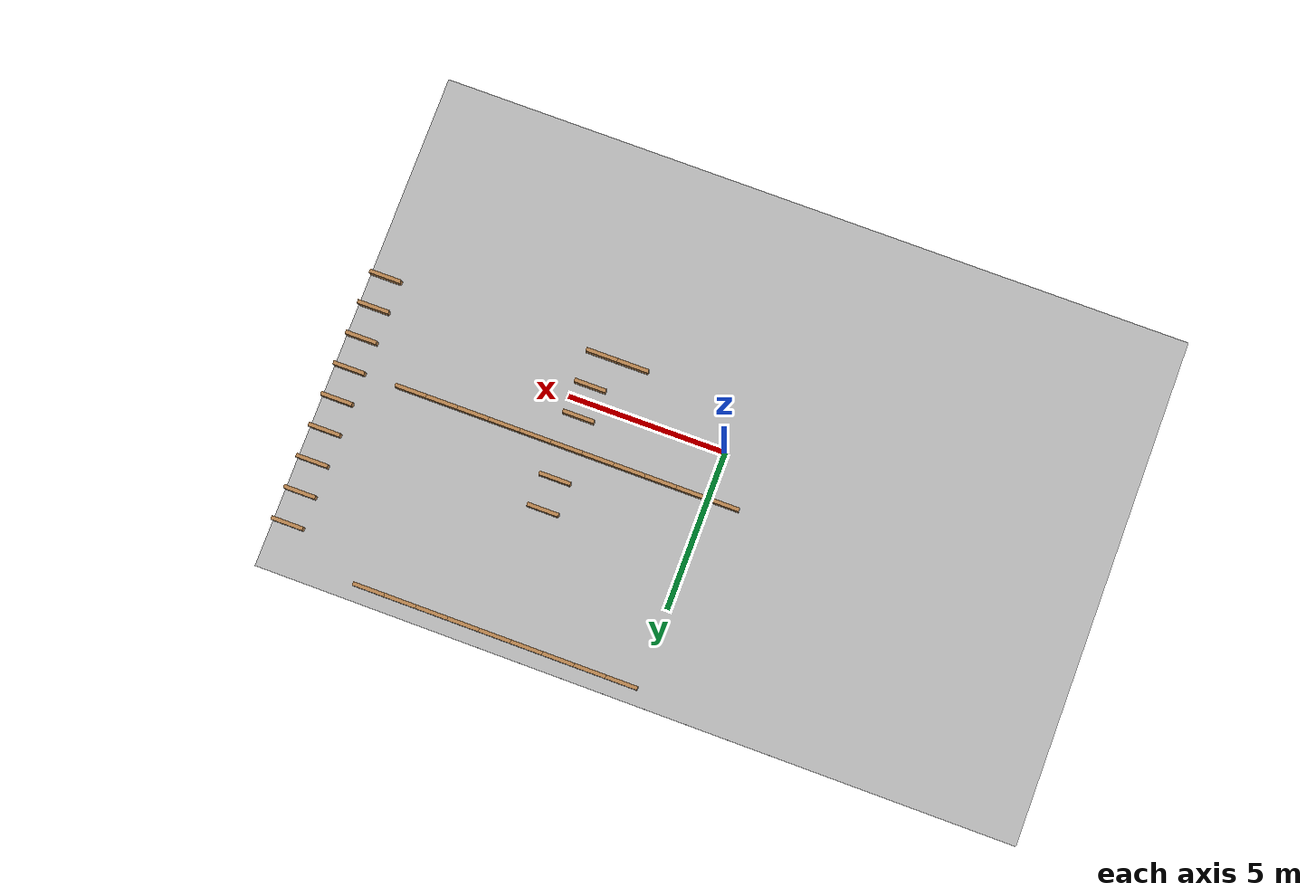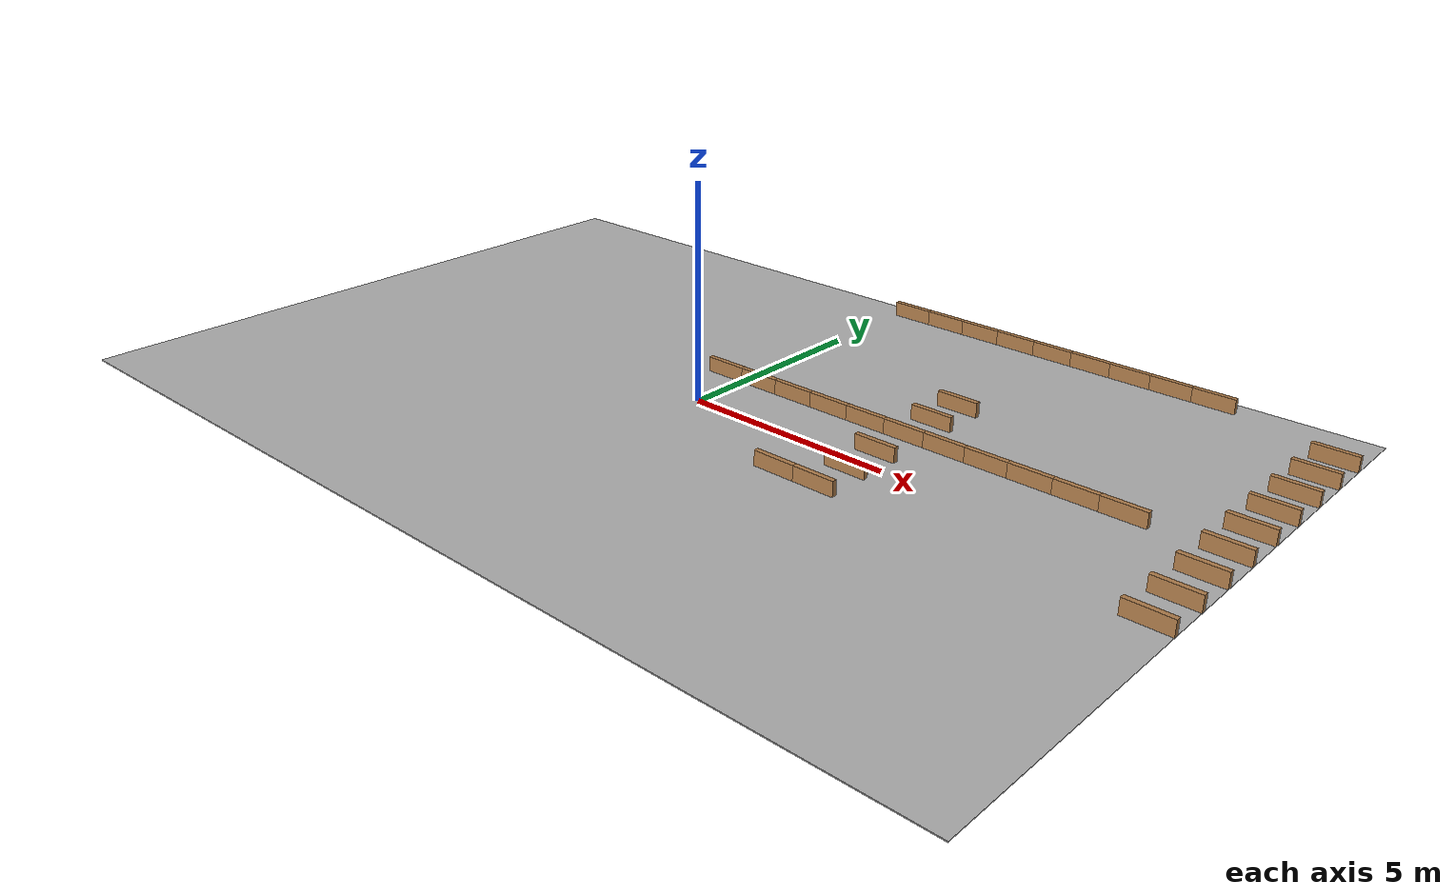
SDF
<sdf version="1.7">
 <world name="default">
  <include><uri>model://sun</uri></include>
  <model name="floor">
   <pose>0 0 -0.01 0 0 0</pose>
   <static>true</static>
   <link name="link">
    <collision name="col"><geometry><box><size>24.0 16.0 0.02</size></box></geometry></collision>
    <visual name="vis">
     <geometry><box><size>24.0 16.0 0.02</size></box></geometry>
     <material>
      <ambient>0.3 0.3 0.3 1</ambient>
      <diffuse>0.7 0.7 0.7 1</diffuse>
      <specular>0.1 0.1 0.1 1</specular>
     </material>
    </visual>
   </link>
  </model>
  <model name="wall_r0_c12">
   <pose>0.5 7.5 0.175 0 0 0</pose>
   <static>true</static>
   <link name="link">
    <collision name="col"><geometry><box><size>1.0 0.12 0.35</size></box></geometry></collision>
    <visual name="vis">
     <geometry><box><size>1.0 0.12 0.35</size></box></geometry>
     <material>
      <ambient>0.3 0.2 0.1 1</ambient>
      <diffuse>0.7 0.5 0.3 1</diffuse>
      <specular>0.1 0.1 0.1 1</specular>
     </material>
    </visual>
   </link>
  </model>
  <model name="wall_r0_c13">
   <pose>1.5 7.5 0.175 0 0 0</pose>
   <static>true</static>
   <link name="link">
    <collision name="col"><geometry><box><size>1.0 0.12 0.35</size></box></geometry></collision>
    <visual name="vis">
     <geometry><box><size>1.0 0.12 0.35</size></box></geometry>
     <material>
      <ambient>0.3 0.2 0.1 1</ambient>
      <diffuse>0.7 0.5 0.3 1</diffuse>
      <specular>0.1 0.1 0.1 1</specular>
     </material>
    </visual>
   </link>
  </model>
  <model name="wall_r0_c14">
   <pose>2.5 7.5 0.175 0 0 0</pose>
   <static>true</static>
   <link name="link">
    <collision name="col"><geometry><box><size>1.0 0.12 0.35</size></box></geometry></collision>
    <visual name="vis">
     <geometry><box><size>1.0 0.12 0.35</size></box></geometry>
     <material>
      <ambient>0.3 0.2 0.1 1</ambient>
      <diffuse>0.7 0.5 0.3 1</diffuse>
      <specular>0.1 0.1 0.1 1</specular>
     </material>
    </visual>
   </link>
  </model>
  <model name="wall_r0_c15">
   <pose>3.5 7.5 0.175 0 0 0</pose>
   <static>true</static>
   <link name="link">
    <collision name="col"><geometry><box><size>1.0 0.12 0.35</size></box></geometry></collision>
    <visual name="vis">
     <geometry><box><size>1.0 0.12 0.35</size></box></geometry>
     <material>
      <ambient>0.3 0.2 0.1 1</ambient>
      <diffuse>0.7 0.5 0.3 1</diffuse>
      <specular>0.1 0.1 0.1 1</specular>
     </material>
    </visual>
   </link>
  </model>
  <model name="wall_r0_c16">
   <pose>4.5 7.5 0.175 0 0 0</pose>
   <static>true</static>
   <link name="link">
    <collision name="col"><geometry><box><size>1.0 0.12 0.35</size></box></geometry></collision>
    <visual name="vis">
     <geometry><box><size>1.0 0.12 0.35</size></box></geometry>
     <material>
      <ambient>0.3 0.2 0.1 1</ambient>
      <diffuse>0.7 0.5 0.3 1</diffuse>
      <specular>0.1 0.1 0.1 1</specular>
     </material>
    </visual>
   </link>
  </model>
  <model name="wall_r0_c17">
   <pose>5.5 7.5 0.175 0 0 0</pose>
   <static>true</static>
   <link name="link">
    <collision name="col"><geometry><box><size>1.0 0.12 0.35</size></box></geometry></collision>
    <visual name="vis">
     <geometry><box><size>1.0 0.12 0.35</size></box></geometry>
     <material>
      <ambient>0.3 0.2 0.1 1</ambient>
      <diffuse>0.7 0.5 0.3 1</diffuse>
      <specular>0.1 0.1 0.1 1</specular>
     </material>
    </visual>
   </link>
  </model>
  <model name="wall_r0_c18">
   <pose>6.5 7.5 0.175 0 0 0</pose>
   <static>true</static>
   <link name="link">
    <collision name="col"><geometry><box><size>1.0 0.12 0.35</size></box></geometry></collision>
    <visual name="vis">
     <geometry><box><size>1.0 0.12 0.35</size></box></geometry>
     <material>
      <ambient>0.3 0.2 0.1 1</ambient>
      <diffuse>0.7 0.5 0.3 1</diffuse>
      <specular>0.1 0.1 0.1 1</specular>
     </material>
    </visual>
   </link>
  </model>
  <model name="wall_r0_c19">
   <pose>7.5 7.5 0.175 0 0 0</pose>
   <static>true</static>
   <link name="link">
    <collision name="col"><geometry><box><size>1.0 0.12 0.35</size></box></geometry></collision>
    <visual name="vis">
     <geometry><box><size>1.0 0.12 0.35</size></box></geometry>
     <material>
      <ambient>0.3 0.2 0.1 1</ambient>
      <diffuse>0.7 0.5 0.3 1</diffuse>
      <specular>0.1 0.1 0.1 1</specular>
     </material>
    </visual>
   </link>
  </model>
  <model name="wall_r0_c20">
   <pose>8.5 7.5 0.175 0 0 0</pose>
   <static>true</static>
   <link name="link">
    <collision name="col"><geometry><box><size>1.0 0.12 0.35</size></box></geometry></collision>
    <visual name="vis">
     <geometry><box><size>1.0 0.12 0.35</size></box></geometry>
     <material>
      <ambient>0.3 0.2 0.1 1</ambient>
      <diffuse>0.7 0.5 0.3 1</diffuse>
      <specular>0.1 0.1 0.1 1</specular>
     </material>
    </visual>
   </link>
  </model>
  <model name="wall_r1_c23">
   <pose>11.5 6.5 0.175 0 0 0</pose>
   <static>true</static>
   <link name="link">
    <collision name="col"><geometry><box><size>1.0 0.12 0.35</size></box></geometry></collision>
    <visual name="vis">
     <geometry><box><size>1.0 0.12 0.35</size></box></geometry>
     <material>
      <ambient>0.3 0.2 0.1 1</ambient>
      <diffuse>0.7 0.5 0.3 1</diffuse>
      <specular>0.1 0.1 0.1 1</specular>
     </material>
    </visual>
   </link>
  </model>
  <model name="wall_r2_c23">
   <pose>11.5 5.5 0.175 0 0 0</pose>
   <static>true</static>
   <link name="link">
    <collision name="col"><geometry><box><size>1.0 0.12 0.35</size></box></geometry></collision>
    <visual name="vis">
     <geometry><box><size>1.0 0.12 0.35</size></box></geometry>
     <material>
      <ambient>0.3 0.2 0.1 1</ambient>
      <diffuse>0.7 0.5 0.3 1</diffuse>
      <specular>0.1 0.1 0.1 1</specular>
     </material>
    </visual>
   </link>
  </model>
  <model name="wall_r3_c23">
   <pose>11.5 4.5 0.175 0 0 0</pose>
   <static>true</static>
   <link name="link">
    <collision name="col"><geometry><box><size>1.0 0.12 0.35</size></box></geometry></collision>
    <visual name="vis">
     <geometry><box><size>1.0 0.12 0.35</size></box></geometry>
     <material>
      <ambient>0.3 0.2 0.1 1</ambient>
      <diffuse>0.7 0.5 0.3 1</diffuse>
      <specular>0.1 0.1 0.1 1</specular>
     </material>
    </visual>
   </link>
  </model>
  <model name="wall_r4_c16">
   <pose>4.5 3.5 0.175 0 0 0</pose>
   <static>true</static>
   <link name="link">
    <collision name="col"><geometry><box><size>1.0 0.12 0.35</size></box></geometry></collision>
    <visual name="vis">
     <geometry><box><size>1.0 0.12 0.35</size></box></geometry>
     <material>
      <ambient>0.3 0.2 0.1 1</ambient>
      <diffuse>0.7 0.5 0.3 1</diffuse>
      <specular>0.1 0.1 0.1 1</specular>
     </material>
    </visual>
   </link>
  </model>
  <model name="wall_r4_c23">
   <pose>11.5 3.5 0.175 0 0 0</pose>
   <static>true</static>
   <link name="link">
    <collision name="col"><geometry><box><size>1.0 0.12 0.35</size></box></geometry></collision>
    <visual name="vis">
     <geometry><box><size>1.0 0.12 0.35</size></box></geometry>
     <material>
      <ambient>0.3 0.2 0.1 1</ambient>
      <diffuse>0.7 0.5 0.3 1</diffuse>
      <specular>0.1 0.1 0.1 1</specular>
     </material>
    </visual>
   </link>
  </model>
  <model name="wall_r5_c16">
   <pose>4.5 2.5 0.175 0 0 0</pose>
   <static>true</static>
   <link name="link">
    <collision name="col"><geometry><box><size>1.0 0.12 0.35</size></box></geometry></collision>
    <visual name="vis">
     <geometry><box><size>1.0 0.12 0.35</size></box></geometry>
     <material>
      <ambient>0.3 0.2 0.1 1</ambient>
      <diffuse>0.7 0.5 0.3 1</diffuse>
      <specular>0.1 0.1 0.1 1</specular>
     </material>
    </visual>
   </link>
  </model>
  <model name="wall_r5_c23">
   <pose>11.5 2.5 0.175 0 0 0</pose>
   <static>true</static>
   <link name="link">
    <collision name="col"><geometry><box><size>1.0 0.12 0.35</size></box></geometry></collision>
    <visual name="vis">
     <geometry><box><size>1.0 0.12 0.35</size></box></geometry>
     <material>
      <ambient>0.3 0.2 0.1 1</ambient>
      <diffuse>0.7 0.5 0.3 1</diffuse>
      <specular>0.1 0.1 0.1 1</specular>
     </material>
    </visual>
   </link>
  </model>
  <model name="wall_r6_c11">
   <pose>-0.5 1.5 0.175 0 0 0</pose>
   <static>true</static>
   <link name="link">
    <collision name="col"><geometry><box><size>1.0 0.12 0.35</size></box></geometry></collision>
    <visual name="vis">
     <geometry><box><size>1.0 0.12 0.35</size></box></geometry>
     <material>
      <ambient>0.3 0.2 0.1 1</ambient>
      <diffuse>0.7 0.5 0.3 1</diffuse>
      <specular>0.1 0.1 0.1 1</specular>
     </material>
    </visual>
   </link>
  </model>
  <model name="wall_r6_c12">
   <pose>0.5 1.5 0.175 0 0 0</pose>
   <static>true</static>
   <link name="link">
    <collision name="col"><geometry><box><size>1.0 0.12 0.35</size></box></geometry></collision>
    <visual name="vis">
     <geometry><box><size>1.0 0.12 0.35</size></box></geometry>
     <material>
      <ambient>0.3 0.2 0.1 1</ambient>
      <diffuse>0.7 0.5 0.3 1</diffuse>
      <specular>0.1 0.1 0.1 1</specular>
     </material>
    </visual>
   </link>
  </model>
  <model name="wall_r6_c13">
   <pose>1.5 1.5 0.175 0 0 0</pose>
   <static>true</static>
   <link name="link">
    <collision name="col"><geometry><box><size>1.0 0.12 0.35</size></box></geometry></collision>
    <visual name="vis">
     <geometry><box><size>1.0 0.12 0.35</size></box></geometry>
     <material>
      <ambient>0.3 0.2 0.1 1</ambient>
      <diffuse>0.7 0.5 0.3 1</diffuse>
      <specular>0.1 0.1 0.1 1</specular>
     </material>
    </visual>
   </link>
  </model>
  <model name="wall_r6_c14">
   <pose>2.5 1.5 0.175 0 0 0</pose>
   <static>true</static>
   <link name="link">
    <collision name="col"><geometry><box><size>1.0 0.12 0.35</size></box></geometry></collision>
    <visual name="vis">
     <geometry><box><size>1.0 0.12 0.35</size></box></geometry>
     <material>
      <ambient>0.3 0.2 0.1 1</ambient>
      <diffuse>0.7 0.5 0.3 1</diffuse>
      <specular>0.1 0.1 0.1 1</specular>
     </material>
    </visual>
   </link>
  </model>
  <model name="wall_r6_c15">
   <pose>3.5 1.5 0.175 0 0 0</pose>
   <static>true</static>
   <link name="link">
    <collision name="col"><geometry><box><size>1.0 0.12 0.35</size></box></geometry></collision>
    <visual name="vis">
     <geometry><box><size>1.0 0.12 0.35</size></box></geometry>
     <material>
      <ambient>0.3 0.2 0.1 1</ambient>
      <diffuse>0.7 0.5 0.3 1</diffuse>
      <specular>0.1 0.1 0.1 1</specular>
     </material>
    </visual>
   </link>
  </model>
  <model name="wall_r6_c16">
   <pose>4.5 1.5 0.175 0 0 0</pose>
   <static>true</static>
   <link name="link">
    <collision name="col"><geometry><box><size>1.0 0.12 0.35</size></box></geometry></collision>
    <visual name="vis">
     <geometry><box><size>1.0 0.12 0.35</size></box></geometry>
     <material>
      <ambient>0.3 0.2 0.1 1</ambient>
      <diffuse>0.7 0.5 0.3 1</diffuse>
      <specular>0.1 0.1 0.1 1</specular>
     </material>
    </visual>
   </link>
  </model>
  <model name="wall_r6_c17">
   <pose>5.5 1.5 0.175 0 0 0</pose>
   <static>true</static>
   <link name="link">
    <collision name="col"><geometry><box><size>1.0 0.12 0.35</size></box></geometry></collision>
    <visual name="vis">
     <geometry><box><size>1.0 0.12 0.35</size></box></geometry>
     <material>
      <ambient>0.3 0.2 0.1 1</ambient>
      <diffuse>0.7 0.5 0.3 1</diffuse>
      <specular>0.1 0.1 0.1 1</specular>
     </material>
    </visual>
   </link>
  </model>
  <model name="wall_r6_c18">
   <pose>6.5 1.5 0.175 0 0 0</pose>
   <static>true</static>
   <link name="link">
    <collision name="col"><geometry><box><size>1.0 0.12 0.35</size></box></geometry></collision>
    <visual name="vis">
     <geometry><box><size>1.0 0.12 0.35</size></box></geometry>
     <material>
      <ambient>0.3 0.2 0.1 1</ambient>
      <diffuse>0.7 0.5 0.3 1</diffuse>
      <specular>0.1 0.1 0.1 1</specular>
     </material>
    </visual>
   </link>
  </model>
  <model name="wall_r6_c19">
   <pose>7.5 1.5 0.175 0 0 0</pose>
   <static>true</static>
   <link name="link">
    <collision name="col"><geometry><box><size>1.0 0.12 0.35</size></box></geometry></collision>
    <visual name="vis">
     <geometry><box><size>1.0 0.12 0.35</size></box></geometry>
     <material>
      <ambient>0.3 0.2 0.1 1</ambient>
      <diffuse>0.7 0.5 0.3 1</diffuse>
      <specular>0.1 0.1 0.1 1</specular>
     </material>
    </visual>
   </link>
  </model>
  <model name="wall_r6_c20">
   <pose>8.5 1.5 0.175 0 0 0</pose>
   <static>true</static>
   <link name="link">
    <collision name="col"><geometry><box><size>1.0 0.12 0.35</size></box></geometry></collision>
    <visual name="vis">
     <geometry><box><size>1.0 0.12 0.35</size></box></geometry>
     <material>
      <ambient>0.3 0.2 0.1 1</ambient>
      <diffuse>0.7 0.5 0.3 1</diffuse>
      <specular>0.1 0.1 0.1 1</specular>
     </material>
    </visual>
   </link>
  </model>
  <model name="wall_r6_c21">
   <pose>9.5 1.5 0.175 0 0 0</pose>
   <static>true</static>
   <link name="link">
    <collision name="col"><geometry><box><size>1.0 0.12 0.35</size></box></geometry></collision>
    <visual name="vis">
     <geometry><box><size>1.0 0.12 0.35</size></box></geometry>
     <material>
      <ambient>0.3 0.2 0.1 1</ambient>
      <diffuse>0.7 0.5 0.3 1</diffuse>
      <specular>0.1 0.1 0.1 1</specular>
     </material>
    </visual>
   </link>
  </model>
  <model name="wall_r6_c23">
   <pose>11.5 1.5 0.175 0 0 0</pose>
   <static>true</static>
   <link name="link">
    <collision name="col"><geometry><box><size>1.0 0.12 0.35</size></box></geometry></collision>
    <visual name="vis">
     <geometry><box><size>1.0 0.12 0.35</size></box></geometry>
     <material>
      <ambient>0.3 0.2 0.1 1</ambient>
      <diffuse>0.7 0.5 0.3 1</diffuse>
      <specular>0.1 0.1 0.1 1</specular>
     </material>
    </visual>
   </link>
  </model>
  <model name="wall_r7_c16">
   <pose>4.5 0.5 0.175 0 0 0</pose>
   <static>true</static>
   <link name="link">
    <collision name="col"><geometry><box><size>1.0 0.12 0.35</size></box></geometry></collision>
    <visual name="vis">
     <geometry><box><size>1.0 0.12 0.35</size></box></geometry>
     <material>
      <ambient>0.3 0.2 0.1 1</ambient>
      <diffuse>0.7 0.5 0.3 1</diffuse>
      <specular>0.1 0.1 0.1 1</specular>
     </material>
    </visual>
   </link>
  </model>
  <model name="wall_r7_c23">
   <pose>11.5 0.5 0.175 0 0 0</pose>
   <static>true</static>
   <link name="link">
    <collision name="col"><geometry><box><size>1.0 0.12 0.35</size></box></geometry></collision>
    <visual name="vis">
     <geometry><box><size>1.0 0.12 0.35</size></box></geometry>
     <material>
      <ambient>0.3 0.2 0.1 1</ambient>
      <diffuse>0.7 0.5 0.3 1</diffuse>
      <specular>0.1 0.1 0.1 1</specular>
     </material>
    </visual>
   </link>
  </model>
  <model name="wall_r8_c16">
   <pose>4.5 -0.5 0.175 0 0 0</pose>
   <static>true</static>
   <link name="link">
    <collision name="col"><geometry><box><size>1.0 0.12 0.35</size></box></geometry></collision>
    <visual name="vis">
     <geometry><box><size>1.0 0.12 0.35</size></box></geometry>
     <material>
      <ambient>0.3 0.2 0.1 1</ambient>
      <diffuse>0.7 0.5 0.3 1</diffuse>
      <specular>0.1 0.1 0.1 1</specular>
     </material>
    </visual>
   </link>
  </model>
  <model name="wall_r8_c23">
   <pose>11.5 -0.5 0.175 0 0 0</pose>
   <static>true</static>
   <link name="link">
    <collision name="col"><geometry><box><size>1.0 0.12 0.35</size></box></geometry></collision>
    <visual name="vis">
     <geometry><box><size>1.0 0.12 0.35</size></box></geometry>
     <material>
      <ambient>0.3 0.2 0.1 1</ambient>
      <diffuse>0.7 0.5 0.3 1</diffuse>
      <specular>0.1 0.1 0.1 1</specular>
     </material>
    </visual>
   </link>
  </model>
  <model name="wall_r9_c15">
   <pose>3.5 -1.5 0.175 0 0 0</pose>
   <static>true</static>
   <link name="link">
    <collision name="col"><geometry><box><size>1.0 0.12 0.35</size></box></geometry></collision>
    <visual name="vis">
     <geometry><box><size>1.0 0.12 0.35</size></box></geometry>
     <material>
      <ambient>0.3 0.2 0.1 1</ambient>
      <diffuse>0.7 0.5 0.3 1</diffuse>
      <specular>0.1 0.1 0.1 1</specular>
     </material>
    </visual>
   </link>
  </model>
  <model name="wall_r9_c16">
   <pose>4.5 -1.5 0.175 0 0 0</pose>
   <static>true</static>
   <link name="link">
    <collision name="col"><geometry><box><size>1.0 0.12 0.35</size></box></geometry></collision>
    <visual name="vis">
     <geometry><box><size>1.0 0.12 0.35</size></box></geometry>
     <material>
      <ambient>0.3 0.2 0.1 1</ambient>
      <diffuse>0.7 0.5 0.3 1</diffuse>
      <specular>0.1 0.1 0.1 1</specular>
     </material>
    </visual>
   </link>
  </model>
  <model name="wall_r9_c23">
   <pose>11.5 -1.5 0.175 0 0 0</pose>
   <static>true</static>
   <link name="link">
    <collision name="col"><geometry><box><size>1.0 0.12 0.35</size></box></geometry></collision>
    <visual name="vis">
     <geometry><box><size>1.0 0.12 0.35</size></box></geometry>
     <material>
      <ambient>0.3 0.2 0.1 1</ambient>
      <diffuse>0.7 0.5 0.3 1</diffuse>
      <specular>0.1 0.1 0.1 1</specular>
     </material>
    </visual>
   </link>
  </model>
 </world>
</sdf>
